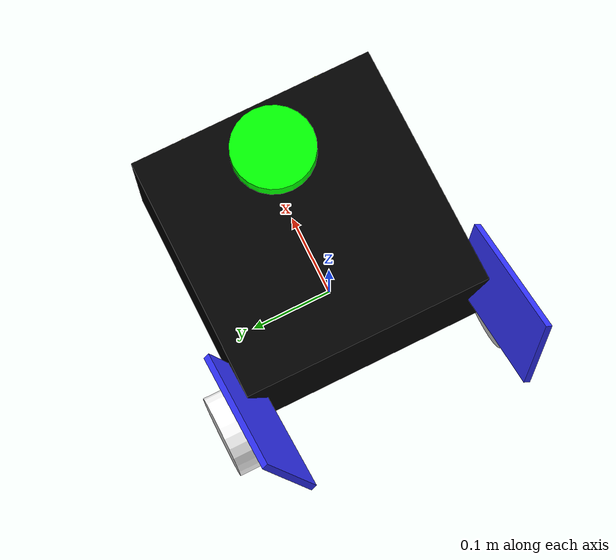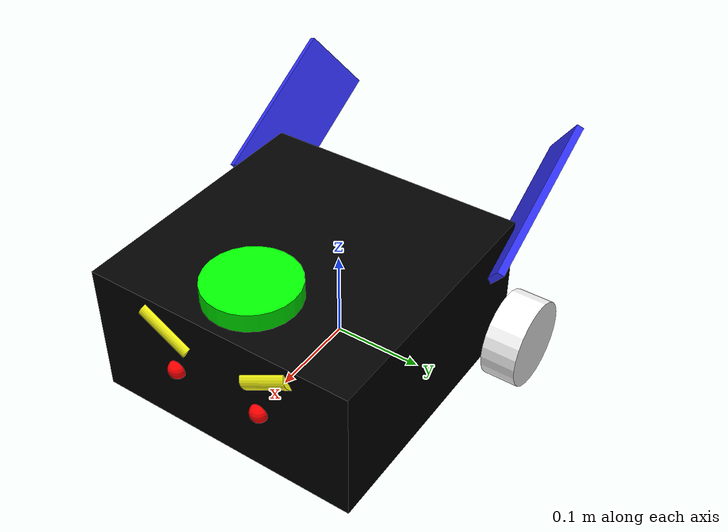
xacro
<?xml version="1.0"?>
<robot xmlns:xacro="http://www.ros.org/wiki/xacro"  name="robot">

    <xacro:include filename = "robot_core.xacro" />

    <xacro:include filename = "gazebo_core.xacro" />

    <xacro:include filename = "lidar_info.xacro" />

    <xacro:include filename = "camera_info.xacro" />
</robot>

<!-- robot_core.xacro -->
<robot xmlns:xacro="http://www.ros.org/wiki/xacro" >

<xacro:include filename = "inertial_macros.xacro" />

    <material name="white">
        <color rgba="1 1 1 1" />
    </material>

    <material name="orange">
        <color rgba="1 0.3 0.1 1"/>
    </material>

    <material name="blue">
        <color rgba="0.2 0.2 1 1"/>
    </material>

    <material name="red">
        <color rgba="1 0 0 1"/>
    </material>

    <material name = "black">
        <color rgba = "0 0 0 1" />
    </material>

    <material name="yellow" >
        <color rgba="1.0 1.0 0.0784313725490196 1.0" />
    </material>

    <!-- BASE LINK -->

    <link name="base_link"></link>

    <link name = "base_footprint"></link>

    <joint name = "base_footprint_joint" type = "fixed">
        <parent link = "base_link" />
        <child link = "base_footprint" />
        <origin xyz = "0 0 0" rpy= "0 0 0" />
    </joint>

    <!-- CHASSIS LINK -->

    <joint name="chassis_joint" type="fixed">
        <parent link="base_link"/>
        <child link="chassis"/>
        <origin xyz="-0.1 0 0"/>
    </joint>

    <link name="chassis">
        <visual>
            <origin xyz="0.15 0 0.075"/>
            <geometry>
                <box size="0.3 0.3 0.15"/>
            </geometry>
            <material name="black"/>
        </visual>

        <collision>
            <origin xyz="0.15 0 0.075"/>
            <geometry>
                <box size="0.3 0.3 0.15"/>
            </geometry>
        </collision>

        <xacro:inertial_box mass = "0.5" x = "0.3" y = "0.3" z = "0.15" >
            <origin xyz = "0 0 0" rpy= "0 0 0" />
        </xacro:inertial_box>

    </link>

    <gazebo reference = "chassis">
        <material>Gazebo/Black</material>
    </gazebo>

    <joint name = "left_wheel_joint" type = "continuous">
        <parent link = "chassis" />
        <child link = "left_wheel" />
        <origin xyz = "0 0.17 0" rpy = "1.57 0 0" />
        <axis xyz = "0 0 -1" />
    </joint>

    <link name = 'left_wheel'>
        <visual>
            <geometry>
                <cylinder radius = "0.05" length = "0.04" />
            </geometry>
            <material name = "white" />
        </visual>

        <collision>
            <geometry>
                <cylinder radius = "0.05" length = "0.04" />
            </geometry>
        </collision>

        <xacro:inertial_cylinder mass = "0.1" radius = "0.05" length = "0.04">
            <origin xyz = "0 0 0" rpy = "0 0 0" />
        </xacro:inertial_cylinder>
    </link>

    <gazebo reference = "left_wheel">
        <material>Gazebo/White</material>
    </gazebo>

    <joint name = "right_wheel_joint" type = "continuous">
        <parent link = "chassis" />
        <child link = "right_wheel" />
        <origin xyz = "0 -0.17 0" rpy = "1.57 0 0" />
        <axis xyz = "0 0 -1" />
    </joint>

    <link name = 'right_wheel'>
        <visual>
            <geometry>
                <cylinder radius = "0.05" length = "0.04" />
            </geometry>
            <material name = "white" />
        </visual>

        <collision>
            <geometry>
                <cylinder radius = "0.05" length = "0.04" />
            </geometry>
        </collision>

        <xacro:inertial_cylinder mass = "0.1" radius = "0.05" length = "0.04">
            <origin xyz = "0 0 0" rpy = "0 0 0" />
        </xacro:inertial_cylinder>
    </link>

    <gazebo reference = "right_wheel">
        <material>Gazebo/White</material>
    </gazebo>

    <joint name = "caster_wheel_joint" type = "fixed">
        <parent link = "chassis" />
        <child link = "caster_wheel" />
        <origin xyz = "0.24 0 0" rpy = "0 0 0" />
    </joint>

    <link name = "caster_wheel">
        <visual>
            <geometry>
                <sphere radius = "0.05" />
            </geometry>
            <material name = "red" />
        </visual>

        <collision>
            <geometry>
                <sphere radius = "0.05" />
            </geometry>
        </collision>

        <xacro:inertial_sphere mass = "0.1" radius = "0.05">
            <origin xyz = "0 0 0" rpy = "0 0 0" />
        </xacro:inertial_sphere>
    </link>

    <gazebo reference = "caster_wheel">
        <material>Gazebo/Red</material>
        <mu1 value = "0.003" />
        <mu2 value = "0.003" />
    </gazebo>

    <joint name="left_hand_joint" type="fixed">
        <parent link="chassis"/>
        <child link="left_hand"/>
        <origin xyz="-0.03 0.15 0.15" rpy = "-${pi/6} ${pi/6} 0"/>
    </joint>

    <link name="left_hand">
        <visual>
            <geometry>
                <box size="0.18 0.008 0.08"/>
            </geometry>
            <material name="blue"/>
        </visual>

        <collision>
            <geometry>
                <box size="0.18 0.008 0.08"/>
            </geometry>
        </collision>

        <xacro:inertial_box mass = "0.1" x= "0.18" y = "0.008" z = "0.08">
            <origin xyz = "0 0 0" rpy = "0 0 0" />
        </xacro:inertial_box>
    </link>

    <gazebo reference = "left_hand">
        <material>Gazebo/Blue</material>
    </gazebo>

    <joint name="right_hand_joint" type="fixed">
        <parent link="chassis"/>
        <child link="right_hand"/>
        <origin xyz="-0.03 -0.15 0.15" rpy = "${pi/6} ${pi/6} 0"/>
    </joint>

    <link name="right_hand">
        <visual>
            <geometry>
                <box size="0.18 0.008 0.08"/>
            </geometry>
            <material name="blue"/>
        </visual>

        <collision>
            <geometry>
                <box size="0.18 0.008 0.08"/>
            </geometry>
        </collision>

        <xacro:inertial_box mass = "0.1" x= "0.18" y = "0.008" z = "0.08">
            <origin xyz = "0 0 0" rpy = "0 0 0" />
        </xacro:inertial_box>
    </link>

    <gazebo reference = "right_hand">
        <material>Gazebo/Blue</material>
    </gazebo>

    <joint name = "left_eye_joint" type = "fixed">
        <parent link = "chassis" />
        <child link = "left_eye" />
        <origin xyz = "0.30 -0.05 0.075" />
    </joint>

    <link name = "left_eye">
        <visual>
            <geometry>
                <sphere radius = "0.01" />
            </geometry>
            <material name = "red" />
        </visual>
    </link>

    <gazebo reference = "left_eye">
        <material>Gazebo/Red</material>
    </gazebo>

    <joint name = "right_eye_joint" type = "fixed">
        <parent link = "chassis" />
        <child link = "right_eye" />
        <origin xyz = "0.30 0.05 0.075" />
    </joint>

    <link name = "right_eye">
        <visual>
            <geometry>
                <sphere radius = "0.01" />
            </geometry>
            <material name = "red" />
        </visual>
    </link>

    <gazebo reference = "right_eye">
        <material>Gazebo/Red</material>
    </gazebo>

    <joint name = "left_eyebrow_joint" type = "fixed">
        <parent link = "chassis" />
        <child link = "left_eyebrow" />
        <origin xyz = "0.295 -0.06 0.12" rpy = "${pi/3} 0 0"/>
    </joint>

    <link name = "left_eyebrow">
        <visual>
            <geometry>
                <cylinder radius = "0.01" length = "0.06" />
            </geometry>
            <material name = "yellow" />
        </visual>
    </link>

    <gazebo reference = "left_eyebrow">
        <material>Gazebo/Yellow</material>
    </gazebo>

    <joint name = "right_eyebrow_joint" type = "fixed">
        <parent link = "chassis" />
        <child link = "right_eyebrow" />
        <origin xyz = "0.295 0.06 0.12" rpy = "-${pi/3} 0 0"/>
    </joint>

    <link name = "right_eyebrow">
        <visual>
            <geometry>
                <cylinder radius = "0.01" length = "0.06" />
            </geometry>
            <material name = "yellow" />
        </visual>
    </link>

    <gazebo reference = "right_eyebrow">
        <material>Gazebo/Yellow</material>
    </gazebo>

</robot>

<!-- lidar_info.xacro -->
<robot xmlns:xacro="http://www.ros.org/wiki/xacro" >

    <material name = "green">
        <color rgba = "0 1 0 1" />
    </material>

    <joint name = "lidar_joint" type = "fixed">
        <parent link = "chassis" />
        <child link = "lidar_link" />
        <origin xyz = "0.24 0 0.15" rpy = "0 0 0" />
    </joint>

    <link name = "lidar_link">
        <visual>
            <geometry>
                <cylinder radius = "0.05" length = "0.04" />
            </geometry>
            <material name = "green" />
        </visual>
    </link>

    <gazebo reference = "lidar_link">
        <material>Gazebo/Green</material>
        <sensor name = "lidar" type = "ray">
            <pose>0 0 0 0 0 0</pose>
            <visualize>true</visualize>
            <update_rate>10</update_rate>
            <ray>
                <scan>
                    <horizontal>
                        <samples>360</samples>
                        <resolution>1</resolution>
                        <min_angle>-3.14</min_angle>
                        <max_angle>3.14</max_angle>
                    </horizontal>
                </scan>
                    <range>
                        <min>0.3</min>
                        <max>12</max>
                        <resolution>0.01</resolution>
                    </range>
            </ray>

            <plugin name = "lidar_control" filename = "libgazebo_ros_ray_sensor.so">
                <ros>
                    <argument>~/out:=scan</argument>
                </ros>
                <output_type>sensor_msgs/LaserScan</output_type>
                <frame_name>lidar_link</frame_name>
            </plugin>
        </sensor>
    </gazebo>

</robot>

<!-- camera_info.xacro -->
<robot xmlns:xacro="http://www.ros.org/wiki/xacro" >

    <joint name = "camera_light_joint" type = "fixed">
        <parent link = "left_eye" />
        <child link = "camera_light" />
        <origin xyz = "0 0 0" rpy = "${-pi/2} 0 ${-pi/2}" />
    </joint>

    <link name = "camera_light"></link>

    <gazebo reference = "left_eye">
        <sensor name = "camera_sensor" type = "camera">
            <pose>0 0 0 0 0 0</pose>
            <visualize>true</visualize>
            <update_rate>10</update_rate>
            <camera>
                <horizontal_fov>1.089</horizontal_fov>
                <image>
                    <format>R8G8B8</format>
                    <height>480</height>
                    <width>640</width>
                </image>

                <clip>
                    <near>0.05</near>
                    <far>8.0</far>
                </clip>
            </camera>
            <plugin name = "camera_control" filename = "libgazebo_ros_camera.so">
                <frame_name>camera_light</frame_name>
            </plugin>
        </sensor>
    </gazebo>

</robot>
